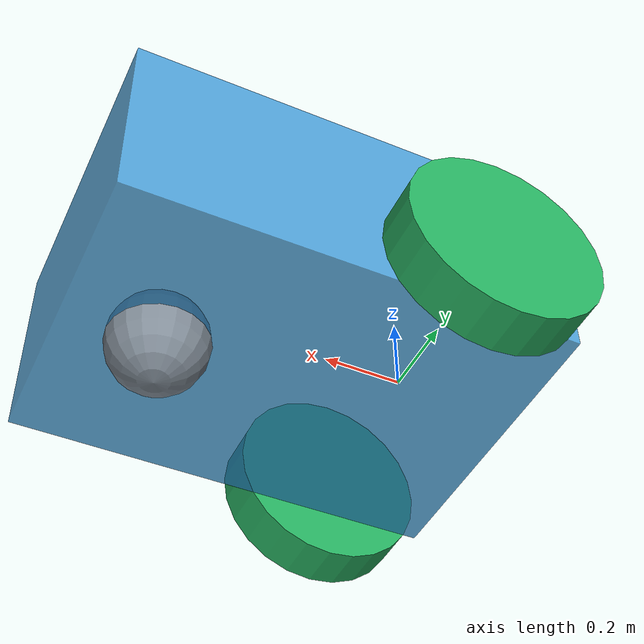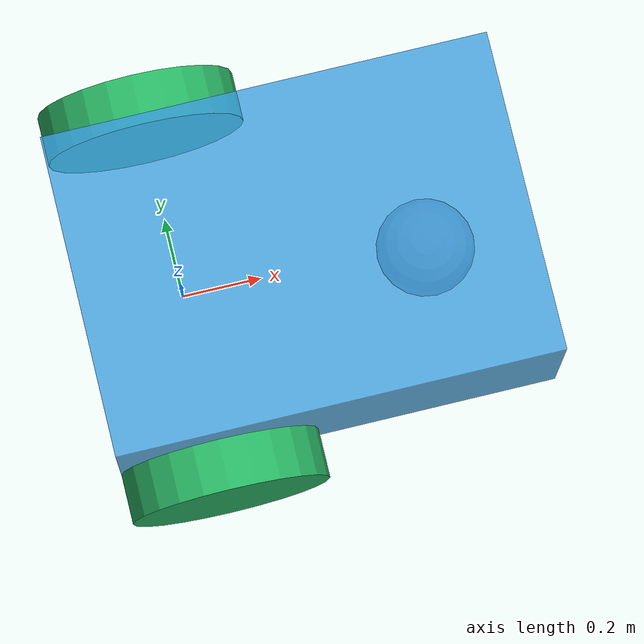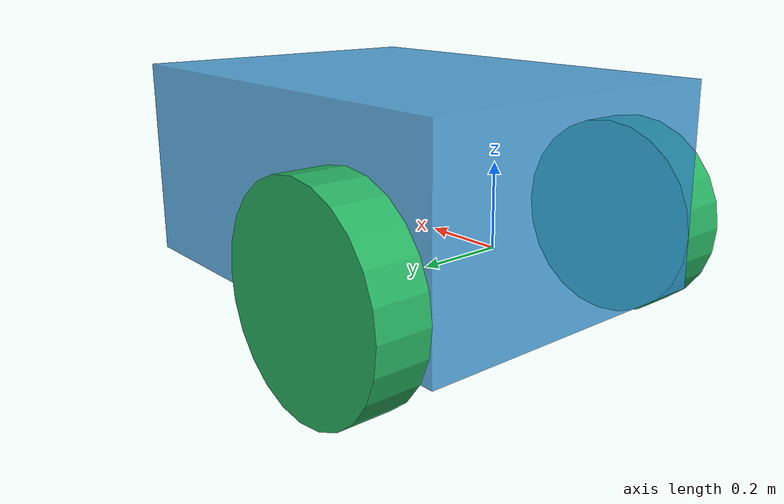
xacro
<?xml version='1.0'?>

<robot xmlns:xacro="http://www.ros.org/wiki/xacro" name="robot_car">

    <xacro:property name="blx" value="${10/9}" />
    <xacro:property name="bly" value="${8/10}" />
    <xacro:property name="blz" value="${5/10}" />

    <xacro:property name="olx" value="${2.5/10}" />
    <xacro:property name="oly" value="${(4+(1.25)/2)/10}" />
    <xacro:property name="olz" value="${1.25/10}" />

    <xacro:property name="crad" value="${5/2/10}" />
    <xacro:property name="clen" value="${1.25/10}" />

    <xacro:property name="srad" value="${2.5/2/10}" />
    <xacro:property name="slx" value="${(10-(2.5/2))/10}" />

    <xacro:macro name="wheel_macro" params="p_name p_radius p_length">
        <link name="${p_name}">
            <visual>
                <!-- box geometry -->
                <geometry>
                    <cylinder radius="${p_radius}" length="${p_length}"/>
                </geometry>
                <material name="verde_obs">
                    <color rgba="0.156 0.705 0.388 1.0"/>
                </material>
                <origin xyz="0 0 0" rpy="${pi/2} 0 0 "/>
            </visual>

            <inertial>
                <mass value="1"/>
                <origin xyz="0 0 0" rpy="0 0 0 "/>
                <inertia ixx="1" ixy="0" ixz="0" iyy="1" iyz="0" izz="1"/>
            </inertial>

            <collision>
                <geometry>
                    <cylinder radius="${p_radius}" length="${p_length}"/>
                </geometry>
                <origin xyz="0 0 0" rpy="${pi/2} 0 0 "/>
            </collision>
        </link>
    </xacro:macro>

    <link name="base_link">
    </link>

    <joint name="base_chasis_joint" type="fixed">
        <parent link="base_link"/>
        <child link="chasis_link"/>
        <origin xyz="${-olx} 0 ${-olz}" rpy="0 0 0"/>
    </joint>

    <link name="chasis_link">
        <visual>
            <!-- box geometry -->
            <geometry>
                <box size="${blx} ${bly} ${blz}"/>
            </geometry>
            <material name="cian">
                <color rgba="0.203 0.596 0.858 0.8"/>
            </material>
            <origin xyz="${blx/2} 0 ${blz/2}" rpy="0 0 0 "/>
        </visual>

        <inertial>
            <mass value="1"/>
            <origin xyz="0 0 0" rpy="0 0 0 "/>
            <inertia ixx="1" ixy="0" ixz="0" iyy="1" iyz="0" izz="1"/>
        </inertial>

        <collision>
            <!-- box geometry -->
            <geometry>
                <box size="${blx} ${bly} ${blz}"/>
            </geometry>
            <origin xyz="${blx/2} 0 ${blz/2}" rpy="0 0 0 "/>
        </collision>
    </link>

    <joint name="chasis_rwheel_joint" type="continuous">
        <parent link="chasis_link"/>
        <child link="rwheel_link"/>
        <origin xyz="${olx} ${oly} ${olz}" rpy="0 0 0"/>
        <axis xyz="0 1 0"/>
        <limit effort="1" lower="0" upper="${2*pi}" velocity="1"/>
        <dynamics damping="1" friction="1"/>
    </joint>

    <xacro:wheel_macro p_name="rwheel_link"
                       p_radius="${crad}"
                       p_length="${clen}"/>

    <joint name="chasis_lwheel_joint" type="continuous">
        <parent link="chasis_link"/>
        <child link="lwheel_link"/>
        <origin xyz="${olx} ${-oly} ${olz}" rpy="0 0 0"/>
        <axis xyz="0 1 0"/>
        <limit effort="1" lower="0" upper="${2*pi}" velocity="1"/>
        <dynamics damping="1" friction="1"/>
    </joint>

    <xacro:wheel_macro p_name="lwheel_link"
                       p_radius="${crad}"
                       p_length="${clen}"/>

    <joint name="chasis_caster_joint" type="fixed">
        <parent link="chasis_link"/>
        <child link="caster_link"/>
        <origin xyz="${slx} 0 0" rpy="0 0 0"/>
    </joint>

    <link name="caster_link">
        <visual>
            <geometry>
                <sphere radius="${srad}"/>
            </geometry>
            <material name="gris">
                <color rgba="0.501 0.545 0.588 1.0"/>
            </material>
            <origin xyz="0 0 0" rpy="0 0 0 "/>
        </visual>

        <inertial>
            <mass value="1"/>
            <origin xyz="0 0 0" rpy="0 0 0 "/>
            <inertia ixx="1" ixy="0" ixz="0" iyy="1" iyz="0" izz="1"/>
        </inertial>

        <collision>
            <geometry>
                <sphere radius="${srad}"/>
            </geometry>
            <origin xyz="0 0 0" rpy="0 0 0 "/>
        </collision>
    </link>

</robot>
